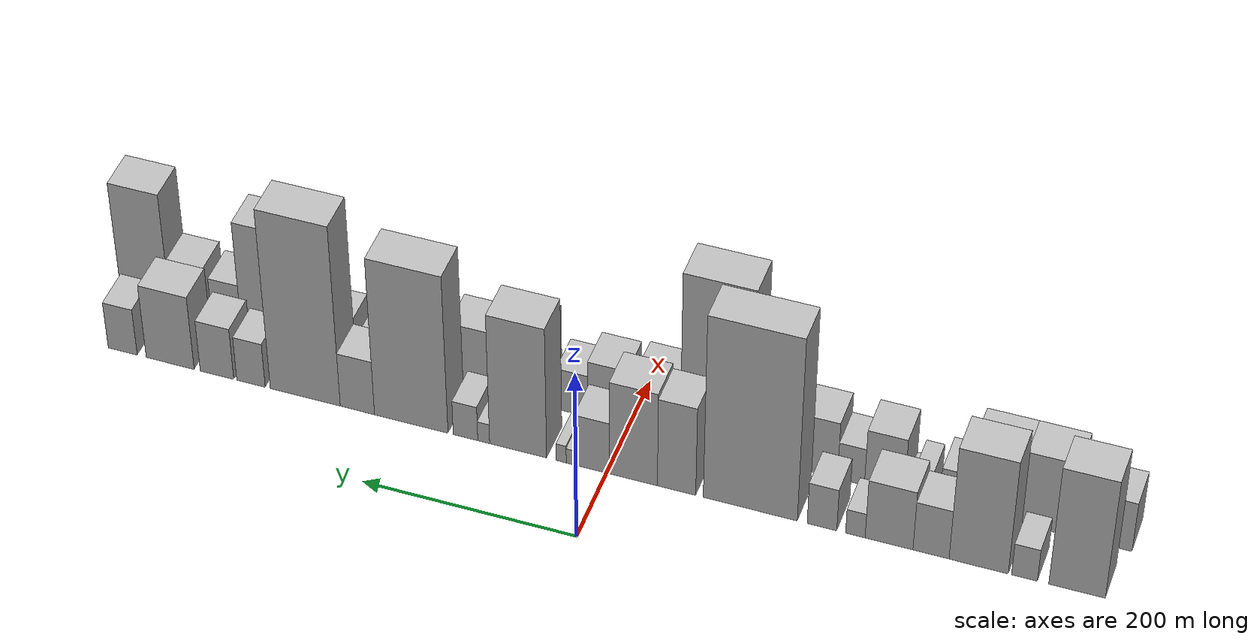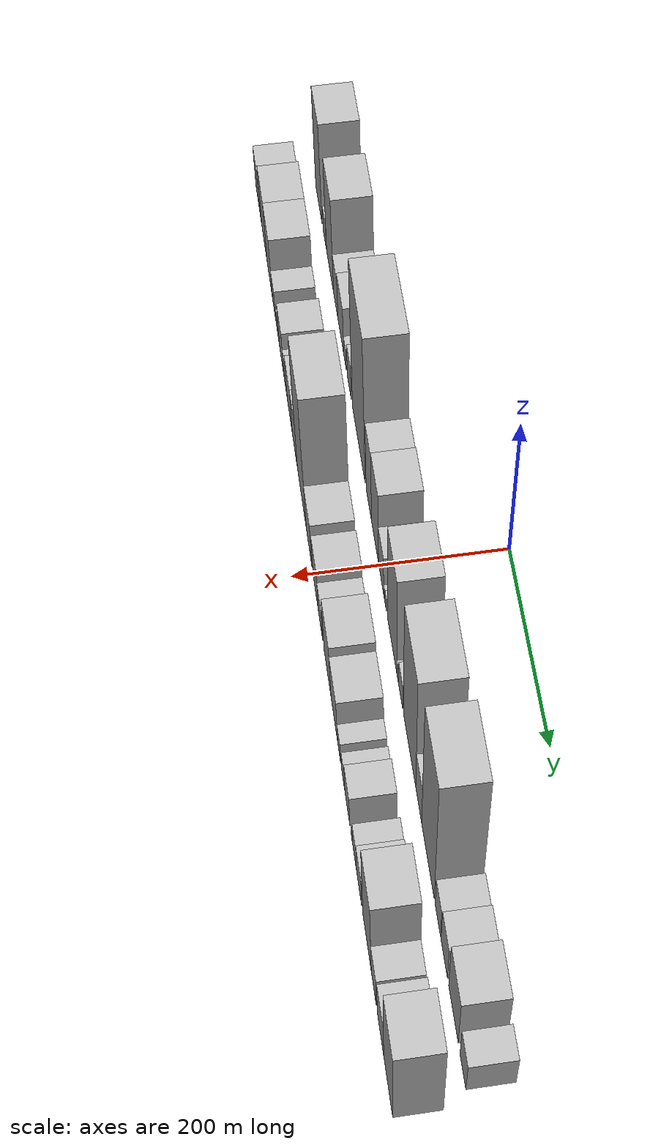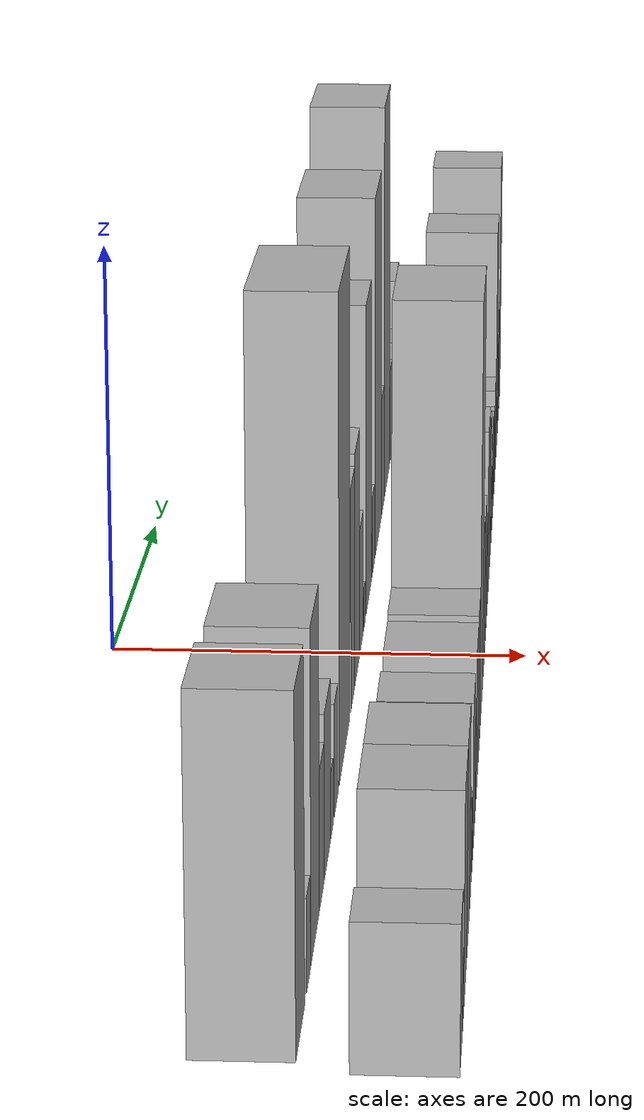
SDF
<sdf version="1.6">
 <world name="default">
  <scene>
   <sky><clouds><speed>12</speed></clouds></sky>
   <ambient>0.4 0.4 0.4 1</ambient>
   <background>0.7 0.7 0.7 1</background>
   <shadows>1</shadows>
  </scene>
  <gravity>0 0 -9.8066</gravity>
  <magnetic_field>6e-06 2.3e-05 -4.2e-05</magnetic_field>
  <physics default="0" name="default_physics" type="ode">
   <ode>
    <solver>
     <type>quick</type>
     <iters>10</iters>
     <sor>1.0</sor>
     <use_dynamic_moi_rescaling>0</use_dynamic_moi_rescaling>
    </solver>
    <constraints>
     <cfm>0</cfm>
     <erp>0.2</erp>
     <contact_max_correcting_vel>100</contact_max_correcting_vel>
     <contact_surface_layer>0.001</contact_surface_layer>
    </constraints>
   </ode>
   <max_step_size>0.004</max_step_size>
   <real_time_factor>1</real_time_factor>
   <real_time_update_rate>250</real_time_update_rate>
  </physics>
  <light name="sun" type="directional">
   <pose>0 0 10 0 0 0</pose>
   <diffuse>0.8 0.8 0.8 1</diffuse>
   <specular>0.2 0.2 0.2 1</specular>
   <attenuation>
    <range>1000</range>
    <constant>0.9</constant>
    <linear>0.01</linear>
    <quadratic>0.001</quadratic>
   </attenuation>
   <direction>-0.5 0.1 -0.9</direction>
  </light>
  <model name="building_1">
   <static>1</static>
   <pose>100.0000 -426.1204 0 0.000000 0.000000 0.000000</pose>
   <link name="link">
    <pose>0 0 72.00 0 0 0</pose>
    <collision name="collision"><geometry><box><size>40.0000 49.7592 144.0000</size></box></geometry></collision>
    <visual name="visual">
     <cast_shadows>0</cast_shadows>
     <geometry><box><size>40.0000 49.7592 144.0000</size></box></geometry>
     <material>
      <script>
       <uri>model://HANNAS_wall/materials/scripts</uri>
       <uri>model://HANNAS_wall/materials/textures</uri>
       <name>vrc/HANNAS_wall</name>
      </script>
     </material>
    </visual>
   </link>
  </model>
  <model name="building_2">
   <static>1</static>
   <pose>100.0000 -379.8264 0 0.000000 0.000000 0.000000</pose>
   <link name="link">
    <pose>0 0 19.50 0 0 0</pose>
    <collision name="collision"><geometry><box><size>40.0000 22.8288 39.0000</size></box></geometry></collision>
    <visual name="visual">
     <cast_shadows>0</cast_shadows>
     <geometry><box><size>40.0000 22.8288 39.0000</size></box></geometry>
     <material>
      <script>
       <uri>model://HANNAS_wall/materials/scripts</uri>
       <uri>model://HANNAS_wall/materials/textures</uri>
       <name>vrc/HANNAS_wall</name>
      </script>
     </material>
    </visual>
   </link>
  </model>
  <model name="building_3">
   <static>1</static>
   <pose>100.0000 -339.0789 0 0.000000 0.000000 0.000000</pose>
   <link name="link">
    <pose>0 0 69.00 0 0 0</pose>
    <collision name="collision"><geometry><box><size>40.0000 52.6660 138.0000</size></box></geometry></collision>
    <visual name="visual">
     <cast_shadows>0</cast_shadows>
     <geometry><box><size>40.0000 52.6660 138.0000</size></box></geometry>
     <material>
      <script>
       <uri>model://HANNAS_wall/materials/scripts</uri>
       <uri>model://HANNAS_wall/materials/textures</uri>
       <name>vrc/HANNAS_wall</name>
      </script>
     </material>
    </visual>
   </link>
  </model>
  <model name="building_4">
   <static>1</static>
   <pose>100.0000 -296.5506 0 0.000000 0.000000 0.000000</pose>
   <link name="link">
    <pose>0 0 30.00 0 0 0</pose>
    <collision name="collision"><geometry><box><size>40.0000 32.3906 60.0000</size></box></geometry></collision>
    <visual name="visual">
     <cast_shadows>0</cast_shadows>
     <geometry><box><size>40.0000 32.3906 60.0000</size></box></geometry>
     <material>
      <script>
       <uri>model://HANNAS_wall/materials/scripts</uri>
       <uri>model://HANNAS_wall/materials/textures</uri>
       <name>vrc/HANNAS_wall</name>
      </script>
     </material>
    </visual>
   </link>
  </model>
  <model name="building_5">
   <static>1</static>
   <pose>100.0000 -258.8108 0 0.000000 0.000000 0.000000</pose>
   <link name="link">
    <pose>0 0 36.00 0 0 0</pose>
    <collision name="collision"><geometry><box><size>40.0000 43.0890 72.0000</size></box></geometry></collision>
    <visual name="visual">
     <cast_shadows>0</cast_shadows>
     <geometry><box><size>40.0000 43.0890 72.0000</size></box></geometry>
     <material>
      <script>
       <uri>model://HANNAS_wall/materials/scripts</uri>
       <uri>model://HANNAS_wall/materials/textures</uri>
       <name>vrc/HANNAS_wall</name>
      </script>
     </material>
    </visual>
   </link>
  </model>
  <model name="building_6">
   <static>1</static>
   <pose>100.0000 -228.4655 0 0.000000 0.000000 0.000000</pose>
   <link name="link">
    <pose>0 0 15.00 0 0 0</pose>
    <collision name="collision"><geometry><box><size>40.0000 17.6015 30.0000</size></box></geometry></collision>
    <visual name="visual">
     <cast_shadows>0</cast_shadows>
     <geometry><box><size>40.0000 17.6015 30.0000</size></box></geometry>
     <material>
      <script>
       <uri>model://HANNAS_wall/materials/scripts</uri>
       <uri>model://HANNAS_wall/materials/textures</uri>
       <name>vrc/HANNAS_wall</name>
      </script>
     </material>
    </visual>
   </link>
  </model>
  <model name="building_7">
   <static>1</static>
   <pose>100.0000 -198.2468 0 0.000000 0.000000 0.000000</pose>
   <link name="link">
    <pose>0 0 25.50 0 0 0</pose>
    <collision name="collision"><geometry><box><size>40.0000 26.8360 51.0000</size></box></geometry></collision>
    <visual name="visual">
     <cast_shadows>0</cast_shadows>
     <geometry><box><size>40.0000 26.8360 51.0000</size></box></geometry>
     <material>
      <script>
       <uri>model://HANNAS_wall/materials/scripts</uri>
       <uri>model://HANNAS_wall/materials/textures</uri>
       <name>vrc/HANNAS_wall</name>
      </script>
     </material>
    </visual>
   </link>
  </model>
  <model name="building_8">
   <static>1</static>
   <pose>100.0000 -132.7053 0 0.000000 0.000000 0.000000</pose>
   <link name="link">
    <pose>0 0 111.00 0 0 0</pose>
    <collision name="collision"><geometry><box><size>40.0000 86.2470 222.0000</size></box></geometry></collision>
    <visual name="visual">
     <cast_shadows>0</cast_shadows>
     <geometry><box><size>40.0000 86.2470 222.0000</size></box></geometry>
     <material>
      <script>
       <uri>model://HANNAS_wall/materials/scripts</uri>
       <uri>model://HANNAS_wall/materials/textures</uri>
       <name>vrc/HANNAS_wall</name>
      </script>
     </material>
    </visual>
   </link>
  </model>
  <model name="building_9">
   <static>1</static>
   <pose>100.0000 -64.8453 0 0.000000 0.000000 0.000000</pose>
   <link name="link">
    <pose>0 0 54.00 0 0 0</pose>
    <collision name="collision"><geometry><box><size>40.0000 35.4730 108.0000</size></box></geometry></collision>
    <visual name="visual">
     <cast_shadows>0</cast_shadows>
     <geometry><box><size>40.0000 35.4730 108.0000</size></box></geometry>
     <material>
      <script>
       <uri>model://HANNAS_wall/materials/scripts</uri>
       <uri>model://HANNAS_wall/materials/textures</uri>
       <name>vrc/HANNAS_wall</name>
      </script>
     </material>
    </visual>
   </link>
  </model>
  <model name="building_10">
   <static>1</static>
   <pose>100.0000 -24.6649 0 0.000000 0.000000 0.000000</pose>
   <link name="link">
    <pose>0 0 57.00 0 0 0</pose>
    <collision name="collision"><geometry><box><size>40.0000 44.8879 114.0000</size></box></geometry></collision>
    <visual name="visual">
     <cast_shadows>0</cast_shadows>
     <geometry><box><size>40.0000 44.8879 114.0000</size></box></geometry>
     <material>
      <script>
       <uri>model://HANNAS_wall/materials/scripts</uri>
       <uri>model://HANNAS_wall/materials/textures</uri>
       <name>vrc/HANNAS_wall</name>
      </script>
     </material>
    </visual>
   </link>
  </model>
  <model name="building_11">
   <static>1</static>
   <pose>100.0000 14.1119 0 0.000000 0.000000 0.000000</pose>
   <link name="link">
    <pose>0 0 31.50 0 0 0</pose>
    <collision name="collision"><geometry><box><size>40.0000 32.6657 63.0000</size></box></geometry></collision>
    <visual name="visual">
     <cast_shadows>0</cast_shadows>
     <geometry><box><size>40.0000 32.6657 63.0000</size></box></geometry>
     <material>
      <script>
       <uri>model://HANNAS_wall/materials/scripts</uri>
       <uri>model://HANNAS_wall/materials/textures</uri>
       <name>vrc/HANNAS_wall</name>
      </script>
     </material>
    </visual>
   </link>
  </model>
  <model name="building_12">
   <static>1</static>
   <pose>100.0000 34.2035 0 0.000000 0.000000 0.000000</pose>
   <link name="link">
    <pose>0 0 9.00 0 0 0</pose>
    <collision name="collision"><geometry><box><size>40.0000 7.5174 18.0000</size></box></geometry></collision>
    <visual name="visual">
     <cast_shadows>0</cast_shadows>
     <geometry><box><size>40.0000 7.5174 18.0000</size></box></geometry>
     <material>
      <script>
       <uri>model://HANNAS_wall/materials/scripts</uri>
       <uri>model://HANNAS_wall/materials/textures</uri>
       <name>vrc/HANNAS_wall</name>
      </script>
     </material>
    </visual>
   </link>
  </model>
  <model name="building_13">
   <static>1</static>
   <pose>100.0000 42.6813 0 0.000000 0.000000 0.000000</pose>
   <link name="link">
    <pose>0 0 10.50 0 0 0</pose>
    <collision name="collision"><geometry><box><size>40.0000 9.4382 21.0000</size></box></geometry></collision>
    <visual name="visual">
     <cast_shadows>0</cast_shadows>
     <geometry><box><size>40.0000 9.4382 21.0000</size></box></geometry>
     <material>
      <script>
       <uri>model://HANNAS_wall/materials/scripts</uri>
       <uri>model://HANNAS_wall/materials/textures</uri>
       <name>vrc/HANNAS_wall</name>
      </script>
     </material>
    </visual>
   </link>
  </model>
  <model name="building_14">
   <static>1</static>
   <pose>100.0000 83.3223 0 0.000000 0.000000 0.000000</pose>
   <link name="link">
    <pose>0 0 79.50 0 0 0</pose>
    <collision name="collision"><geometry><box><size>40.0000 53.8439 159.0000</size></box></geometry></collision>
    <visual name="visual">
     <cast_shadows>0</cast_shadows>
     <geometry><box><size>40.0000 53.8439 159.0000</size></box></geometry>
     <material>
      <script>
       <uri>model://HANNAS_wall/materials/scripts</uri>
       <uri>model://HANNAS_wall/materials/textures</uri>
       <name>vrc/HANNAS_wall</name>
      </script>
     </material>
    </visual>
   </link>
  </model>
  <model name="building_15">
   <static>1</static>
   <pose>100.0000 115.8907 0 0.000000 0.000000 0.000000</pose>
   <link name="link">
    <pose>0 0 12.00 0 0 0</pose>
    <collision name="collision"><geometry><box><size>40.0000 11.2929 24.0000</size></box></geometry></collision>
    <visual name="visual">
     <cast_shadows>0</cast_shadows>
     <geometry><box><size>40.0000 11.2929 24.0000</size></box></geometry>
     <material>
      <script>
       <uri>model://HANNAS_wall/materials/scripts</uri>
       <uri>model://HANNAS_wall/materials/textures</uri>
       <name>vrc/HANNAS_wall</name>
      </script>
     </material>
    </visual>
   </link>
  </model>
  <model name="building_16">
   <static>1</static>
   <pose>100.0000 133.2176 0 0.000000 0.000000 0.000000</pose>
   <link name="link">
    <pose>0 0 21.00 0 0 0</pose>
    <collision name="collision"><geometry><box><size>40.0000 23.3609 42.0000</size></box></geometry></collision>
    <visual name="visual">
     <cast_shadows>0</cast_shadows>
     <geometry><box><size>40.0000 23.3609 42.0000</size></box></geometry>
     <material>
      <script>
       <uri>model://HANNAS_wall/materials/scripts</uri>
       <uri>model://HANNAS_wall/materials/textures</uri>
       <name>vrc/HANNAS_wall</name>
      </script>
     </material>
    </visual>
   </link>
  </model>
  <model name="building_17">
   <static>1</static>
   <pose>100.0000 185.1292 0 0.000000 0.000000 0.000000</pose>
   <link name="link">
    <pose>0 0 96.00 0 0 0</pose>
    <collision name="collision"><geometry><box><size>40.0000 70.4622 192.0000</size></box></geometry></collision>
    <visual name="visual">
     <cast_shadows>0</cast_shadows>
     <geometry><box><size>40.0000 70.4622 192.0000</size></box></geometry>
     <material>
      <script>
       <uri>model://HANNAS_wall/materials/scripts</uri>
       <uri>model://HANNAS_wall/materials/textures</uri>
       <name>vrc/HANNAS_wall</name>
      </script>
     </material>
    </visual>
   </link>
  </model>
  <model name="building_18">
   <static>1</static>
   <pose>100.0000 236.8754 0 0.000000 0.000000 0.000000</pose>
   <link name="link">
    <pose>0 0 33.00 0 0 0</pose>
    <collision name="collision"><geometry><box><size>40.0000 33.0302 66.0000</size></box></geometry></collision>
    <visual name="visual">
     <cast_shadows>0</cast_shadows>
     <geometry><box><size>40.0000 33.0302 66.0000</size></box></geometry>
     <material>
      <script>
       <uri>model://HANNAS_wall/materials/scripts</uri>
       <uri>model://HANNAS_wall/materials/textures</uri>
       <name>vrc/HANNAS_wall</name>
      </script>
     </material>
    </visual>
   </link>
  </model>
  <model name="building_19">
   <static>1</static>
   <pose>100.0000 287.3992 0 0.000000 0.000000 0.000000</pose>
   <link name="link">
    <pose>0 0 109.50 0 0 0</pose>
    <collision name="collision"><geometry><box><size>40.0000 68.0175 219.0000</size></box></geometry></collision>
    <visual name="visual">
     <cast_shadows>0</cast_shadows>
     <geometry><box><size>40.0000 68.0175 219.0000</size></box></geometry>
     <material>
      <script>
       <uri>model://HANNAS_wall/materials/scripts</uri>
       <uri>model://HANNAS_wall/materials/textures</uri>
       <name>vrc/HANNAS_wall</name>
      </script>
     </material>
    </visual>
   </link>
  </model>
  <model name="building_20">
   <static>1</static>
   <pose>100.0000 340.3012 0 0.000000 0.000000 0.000000</pose>
   <link name="link">
    <pose>0 0 27.00 0 0 0</pose>
    <collision name="collision"><geometry><box><size>40.0000 27.7864 54.0000</size></box></geometry></collision>
    <visual name="visual">
     <cast_shadows>0</cast_shadows>
     <geometry><box><size>40.0000 27.7864 54.0000</size></box></geometry>
     <material>
      <script>
       <uri>model://HANNAS_wall/materials/scripts</uri>
       <uri>model://HANNAS_wall/materials/textures</uri>
       <name>vrc/HANNAS_wall</name>
      </script>
     </material>
    </visual>
   </link>
  </model>
  <model name="building_21">
   <static>1</static>
   <pose>100.0000 373.6779 0 0.000000 0.000000 0.000000</pose>
   <link name="link">
    <pose>0 0 31.50 0 0 0</pose>
    <collision name="collision"><geometry><box><size>40.0000 32.9671 63.0000</size></box></geometry></collision>
    <visual name="visual">
     <cast_shadows>0</cast_shadows>
     <geometry><box><size>40.0000 32.9671 63.0000</size></box></geometry>
     <material>
      <script>
       <uri>model://HANNAS_wall/materials/scripts</uri>
       <uri>model://HANNAS_wall/materials/textures</uri>
       <name>vrc/HANNAS_wall</name>
      </script>
     </material>
    </visual>
   </link>
  </model>
  <model name="building_22">
   <static>1</static>
   <pose>100.0000 419.8662 0 0.000000 0.000000 0.000000</pose>
   <link name="link">
    <pose>0 0 45.00 0 0 0</pose>
    <collision name="collision"><geometry><box><size>40.0000 47.4095 90.0000</size></box></geometry></collision>
    <visual name="visual">
     <cast_shadows>0</cast_shadows>
     <geometry><box><size>40.0000 47.4095 90.0000</size></box></geometry>
     <material>
      <script>
       <uri>model://HANNAS_wall/materials/scripts</uri>
       <uri>model://HANNAS_wall/materials/textures</uri>
       <name>vrc/HANNAS_wall</name>
      </script>
     </material>
    </visual>
   </link>
  </model>
  <model name="building_23">
   <static>1</static>
   <pose>100.0000 466.9718 0 0.000000 0.000000 0.000000</pose>
   <link name="link">
    <pose>0 0 28.50 0 0 0</pose>
    <collision name="collision"><geometry><box><size>40.0000 28.8017 57.0000</size></box></geometry></collision>
    <visual name="visual">
     <cast_shadows>0</cast_shadows>
     <geometry><box><size>40.0000 28.8017 57.0000</size></box></geometry>
     <material>
      <script>
       <uri>model://HANNAS_wall/materials/scripts</uri>
       <uri>model://HANNAS_wall/materials/textures</uri>
       <name>vrc/HANNAS_wall</name>
      </script>
     </material>
    </visual>
   </link>
  </model>
  <model name="building_24">
   <static>1</static>
   <pose>160.0000 -444.2608 0 0.000000 0.000000 0.000000</pose>
   <link name="link">
    <pose>0 0 30.00 0 0 0</pose>
    <collision name="collision"><geometry><box><size>40.0000 31.4785 60.0000</size></box></geometry></collision>
    <visual name="visual">
     <cast_shadows>0</cast_shadows>
     <geometry><box><size>40.0000 31.4785 60.0000</size></box></geometry>
     <material>
      <script>
       <uri>model://HANNAS_wall/materials/scripts</uri>
       <uri>model://HANNAS_wall/materials/textures</uri>
       <name>vrc/HANNAS_wall</name>
      </script>
     </material>
    </visual>
   </link>
  </model>
  <model name="building_25">
   <static>1</static>
   <pose>160.0000 -420.6470 0 0.000000 0.000000 0.000000</pose>
   <link name="link">
    <pose>0 0 15.00 0 0 0</pose>
    <collision name="collision"><geometry><box><size>40.0000 15.7491 30.0000</size></box></geometry></collision>
    <visual name="visual">
     <cast_shadows>0</cast_shadows>
     <geometry><box><size>40.0000 15.7491 30.0000</size></box></geometry>
     <material>
      <script>
       <uri>model://HANNAS_wall/materials/scripts</uri>
       <uri>model://HANNAS_wall/materials/textures</uri>
       <name>vrc/HANNAS_wall</name>
      </script>
     </material>
    </visual>
   </link>
  </model>
  <model name="building_26">
   <static>1</static>
   <pose>160.0000 -409.7608 0 0.000000 0.000000 0.000000</pose>
   <link name="link">
    <pose>0 0 7.50 0 0 0</pose>
    <collision name="collision"><geometry><box><size>40.0000 6.0232 15.0000</size></box></geometry></collision>
    <visual name="visual">
     <cast_shadows>0</cast_shadows>
     <geometry><box><size>40.0000 6.0232 15.0000</size></box></geometry>
     <material>
      <script>
       <uri>model://HANNAS_wall/materials/scripts</uri>
       <uri>model://HANNAS_wall/materials/textures</uri>
       <name>vrc/HANNAS_wall</name>
      </script>
     </material>
    </visual>
   </link>
  </model>
  <model name="building_27">
   <static>1</static>
   <pose>160.0000 -383.4668 0 0.000000 0.000000 0.000000</pose>
   <link name="link">
    <pose>0 0 45.00 0 0 0</pose>
    <collision name="collision"><geometry><box><size>40.0000 46.5648 90.0000</size></box></geometry></collision>
    <visual name="visual">
     <cast_shadows>0</cast_shadows>
     <geometry><box><size>40.0000 46.5648 90.0000</size></box></geometry>
     <material>
      <script>
       <uri>model://HANNAS_wall/materials/scripts</uri>
       <uri>model://HANNAS_wall/materials/textures</uri>
       <name>vrc/HANNAS_wall</name>
      </script>
     </material>
    </visual>
   </link>
  </model>
  <model name="building_28">
   <static>1</static>
   <pose>160.0000 -336.9314 0 0.000000 0.000000 0.000000</pose>
   <link name="link">
    <pose>0 0 45.00 0 0 0</pose>
    <collision name="collision"><geometry><box><size>40.0000 46.5062 90.0000</size></box></geometry></collision>
    <visual name="visual">
     <cast_shadows>0</cast_shadows>
     <geometry><box><size>40.0000 46.5062 90.0000</size></box></geometry>
     <material>
      <script>
       <uri>model://HANNAS_wall/materials/scripts</uri>
       <uri>model://HANNAS_wall/materials/textures</uri>
       <name>vrc/HANNAS_wall</name>
      </script>
     </material>
    </visual>
   </link>
  </model>
  <model name="building_29">
   <static>1</static>
   <pose>160.0000 -300.6192 0 0.000000 0.000000 0.000000</pose>
   <link name="link">
    <pose>0 0 22.50 0 0 0</pose>
    <collision name="collision"><geometry><box><size>40.0000 26.1182 45.0000</size></box></geometry></collision>
    <visual name="visual">
     <cast_shadows>0</cast_shadows>
     <geometry><box><size>40.0000 26.1182 45.0000</size></box></geometry>
     <material>
      <script>
       <uri>model://HANNAS_wall/materials/scripts</uri>
       <uri>model://HANNAS_wall/materials/textures</uri>
       <name>vrc/HANNAS_wall</name>
      </script>
     </material>
    </visual>
   </link>
  </model>
  <model name="building_30">
   <static>1</static>
   <pose>160.0000 -271.1797 0 0.000000 0.000000 0.000000</pose>
   <link name="link">
    <pose>0 0 16.50 0 0 0</pose>
    <collision name="collision"><geometry><box><size>40.0000 16.7608 33.0000</size></box></geometry></collision>
    <visual name="visual">
     <cast_shadows>0</cast_shadows>
     <geometry><box><size>40.0000 16.7608 33.0000</size></box></geometry>
     <material>
      <script>
       <uri>model://HANNAS_wall/materials/scripts</uri>
       <uri>model://HANNAS_wall/materials/textures</uri>
       <name>vrc/HANNAS_wall</name>
      </script>
     </material>
    </visual>
   </link>
  </model>
  <model name="building_31">
   <static>1</static>
   <pose>160.0000 -259.1340 0 0.000000 0.000000 0.000000</pose>
   <link name="link">
    <pose>0 0 7.50 0 0 0</pose>
    <collision name="collision"><geometry><box><size>40.0000 7.3306 15.0000</size></box></geometry></collision>
    <visual name="visual">
     <cast_shadows>0</cast_shadows>
     <geometry><box><size>40.0000 7.3306 15.0000</size></box></geometry>
     <material>
      <script>
       <uri>model://HANNAS_wall/materials/scripts</uri>
       <uri>model://HANNAS_wall/materials/textures</uri>
       <name>vrc/HANNAS_wall</name>
      </script>
     </material>
    </visual>
   </link>
  </model>
  <model name="building_32">
   <static>1</static>
   <pose>160.0000 -237.2699 0 0.000000 0.000000 0.000000</pose>
   <link name="link">
    <pose>0 0 34.50 0 0 0</pose>
    <collision name="collision"><geometry><box><size>40.0000 36.3977 69.0000</size></box></geometry></collision>
    <visual name="visual">
     <cast_shadows>0</cast_shadows>
     <geometry><box><size>40.0000 36.3977 69.0000</size></box></geometry>
     <material>
      <script>
       <uri>model://HANNAS_wall/materials/scripts</uri>
       <uri>model://HANNAS_wall/materials/textures</uri>
       <name>vrc/HANNAS_wall</name>
      </script>
     </material>
    </visual>
   </link>
  </model>
  <model name="building_33">
   <static>1</static>
   <pose>160.0000 -206.7360 0 0.000000 0.000000 0.000000</pose>
   <link name="link">
    <pose>0 0 22.50 0 0 0</pose>
    <collision name="collision"><geometry><box><size>40.0000 24.6701 45.0000</size></box></geometry></collision>
    <visual name="visual">
     <cast_shadows>0</cast_shadows>
     <geometry><box><size>40.0000 24.6701 45.0000</size></box></geometry>
     <material>
      <script>
       <uri>model://HANNAS_wall/materials/scripts</uri>
       <uri>model://HANNAS_wall/materials/textures</uri>
       <name>vrc/HANNAS_wall</name>
      </script>
     </material>
    </visual>
   </link>
  </model>
  <model name="building_34">
   <static>1</static>
   <pose>160.0000 -173.7825 0 0.000000 0.000000 0.000000</pose>
   <link name="link">
    <pose>0 0 34.50 0 0 0</pose>
    <collision name="collision"><geometry><box><size>40.0000 41.2369 69.0000</size></box></geometry></collision>
    <visual name="visual">
     <cast_shadows>0</cast_shadows>
     <geometry><box><size>40.0000 41.2369 69.0000</size></box></geometry>
     <material>
      <script>
       <uri>model://HANNAS_wall/materials/scripts</uri>
       <uri>model://HANNAS_wall/materials/textures</uri>
       <name>vrc/HANNAS_wall</name>
      </script>
     </material>
    </visual>
   </link>
  </model>
  <model name="building_35">
   <static>1</static>
   <pose>160.0000 -134.2982 0 0.000000 0.000000 0.000000</pose>
   <link name="link">
    <pose>0 0 36.00 0 0 0</pose>
    <collision name="collision"><geometry><box><size>40.0000 37.7316 72.0000</size></box></geometry></collision>
    <visual name="visual">
     <cast_shadows>0</cast_shadows>
     <geometry><box><size>40.0000 37.7316 72.0000</size></box></geometry>
     <material>
      <script>
       <uri>model://HANNAS_wall/materials/scripts</uri>
       <uri>model://HANNAS_wall/materials/textures</uri>
       <name>vrc/HANNAS_wall</name>
      </script>
     </material>
    </visual>
   </link>
  </model>
  <model name="building_36">
   <static>1</static>
   <pose>160.0000 -81.9164 0 0.000000 0.000000 0.000000</pose>
   <link name="link">
    <pose>0 0 102.00 0 0 0</pose>
    <collision name="collision"><geometry><box><size>40.0000 67.0320 204.0000</size></box></geometry></collision>
    <visual name="visual">
     <cast_shadows>0</cast_shadows>
     <geometry><box><size>40.0000 67.0320 204.0000</size></box></geometry>
     <material>
      <script>
       <uri>model://HANNAS_wall/materials/scripts</uri>
       <uri>model://HANNAS_wall/materials/textures</uri>
       <name>vrc/HANNAS_wall</name>
      </script>
     </material>
    </visual>
   </link>
  </model>
  <model name="building_37">
   <static>1</static>
   <pose>160.0000 -27.4535 0 0.000000 0.000000 0.000000</pose>
   <link name="link">
    <pose>0 0 36.00 0 0 0</pose>
    <collision name="collision"><geometry><box><size>40.0000 41.8938 72.0000</size></box></geometry></collision>
    <visual name="visual">
     <cast_shadows>0</cast_shadows>
     <geometry><box><size>40.0000 41.8938 72.0000</size></box></geometry>
     <material>
      <script>
       <uri>model://HANNAS_wall/materials/scripts</uri>
       <uri>model://HANNAS_wall/materials/textures</uri>
       <name>vrc/HANNAS_wall</name>
      </script>
     </material>
    </visual>
   </link>
  </model>
  <model name="building_38">
   <static>1</static>
   <pose>160.0000 20.1905 0 0.000000 0.000000 0.000000</pose>
   <link name="link">
    <pose>0 0 34.50 0 0 0</pose>
    <collision name="collision"><geometry><box><size>40.0000 37.3941 69.0000</size></box></geometry></collision>
    <visual name="visual">
     <cast_shadows>0</cast_shadows>
     <geometry><box><size>40.0000 37.3941 69.0000</size></box></geometry>
     <material>
      <script>
       <uri>model://HANNAS_wall/materials/scripts</uri>
       <uri>model://HANNAS_wall/materials/textures</uri>
       <name>vrc/HANNAS_wall</name>
      </script>
     </material>
    </visual>
   </link>
  </model>
  <model name="building_39">
   <static>1</static>
   <pose>160.0000 53.7200 0 0.000000 0.000000 0.000000</pose>
   <link name="link">
    <pose>0 0 25.50 0 0 0</pose>
    <collision name="collision"><geometry><box><size>40.0000 29.6651 51.0000</size></box></geometry></collision>
    <visual name="visual">
     <cast_shadows>0</cast_shadows>
     <geometry><box><size>40.0000 29.6651 51.0000</size></box></geometry>
     <material>
      <script>
       <uri>model://HANNAS_wall/materials/scripts</uri>
       <uri>model://HANNAS_wall/materials/textures</uri>
       <name>vrc/HANNAS_wall</name>
      </script>
     </material>
    </visual>
   </link>
  </model>
  <model name="building_40">
   <static>1</static>
   <pose>160.0000 101.4592 0 0.000000 0.000000 0.000000</pose>
   <link name="link">
    <pose>0 0 45.00 0 0 0</pose>
    <collision name="collision"><geometry><box><size>40.0000 47.8132 90.0000</size></box></geometry></collision>
    <visual name="visual">
     <cast_shadows>0</cast_shadows>
     <geometry><box><size>40.0000 47.8132 90.0000</size></box></geometry>
     <material>
      <script>
       <uri>model://HANNAS_wall/materials/scripts</uri>
       <uri>model://HANNAS_wall/materials/textures</uri>
       <name>vrc/HANNAS_wall</name>
      </script>
     </material>
    </visual>
   </link>
  </model>
  <model name="building_41">
   <static>1</static>
   <pose>160.0000 147.4232 0 0.000000 0.000000 0.000000</pose>
   <link name="link">
    <pose>0 0 37.50 0 0 0</pose>
    <collision name="collision"><geometry><box><size>40.0000 44.1148 75.0000</size></box></geometry></collision>
    <visual name="visual">
     <cast_shadows>0</cast_shadows>
     <geometry><box><size>40.0000 44.1148 75.0000</size></box></geometry>
     <material>
      <script>
       <uri>model://HANNAS_wall/materials/scripts</uri>
       <uri>model://HANNAS_wall/materials/textures</uri>
       <name>vrc/HANNAS_wall</name>
      </script>
     </material>
    </visual>
   </link>
  </model>
  <model name="building_42">
   <static>1</static>
   <pose>160.0000 179.1580 0 0.000000 0.000000 0.000000</pose>
   <link name="link">
    <pose>0 0 18.00 0 0 0</pose>
    <collision name="collision"><geometry><box><size>40.0000 19.3549 36.0000</size></box></geometry></collision>
    <visual name="visual">
     <cast_shadows>0</cast_shadows>
     <geometry><box><size>40.0000 19.3549 36.0000</size></box></geometry>
     <material>
      <script>
       <uri>model://HANNAS_wall/materials/scripts</uri>
       <uri>model://HANNAS_wall/materials/textures</uri>
       <name>vrc/HANNAS_wall</name>
      </script>
     </material>
    </visual>
   </link>
  </model>
  <model name="building_43">
   <static>1</static>
   <pose>160.0000 205.8240 0 0.000000 0.000000 0.000000</pose>
   <link name="link">
    <pose>0 0 18.00 0 0 0</pose>
    <collision name="collision"><geometry><box><size>40.0000 19.9771 36.0000</size></box></geometry></collision>
    <visual name="visual">
     <cast_shadows>0</cast_shadows>
     <geometry><box><size>40.0000 19.9771 36.0000</size></box></geometry>
     <material>
      <script>
       <uri>model://HANNAS_wall/materials/scripts</uri>
       <uri>model://HANNAS_wall/materials/textures</uri>
       <name>vrc/HANNAS_wall</name>
      </script>
     </material>
    </visual>
   </link>
  </model>
  <model name="building_44">
   <static>1</static>
   <pose>160.0000 231.4944 0 0.000000 0.000000 0.000000</pose>
   <link name="link">
    <pose>0 0 27.00 0 0 0</pose>
    <collision name="collision"><geometry><box><size>40.0000 31.3637 54.0000</size></box></geometry></collision>
    <visual name="visual">
     <cast_shadows>0</cast_shadows>
     <geometry><box><size>40.0000 31.3637 54.0000</size></box></geometry>
     <material>
      <script>
       <uri>model://HANNAS_wall/materials/scripts</uri>
       <uri>model://HANNAS_wall/materials/textures</uri>
       <name>vrc/HANNAS_wall</name>
      </script>
     </material>
    </visual>
   </link>
  </model>
  <model name="building_45">
   <static>1</static>
   <pose>160.0000 260.5845 0 0.000000 0.000000 0.000000</pose>
   <link name="link">
    <pose>0 0 9.00 0 0 0</pose>
    <collision name="collision"><geometry><box><size>40.0000 8.8166 18.0000</size></box></geometry></collision>
    <visual name="visual">
     <cast_shadows>0</cast_shadows>
     <geometry><box><size>40.0000 8.8166 18.0000</size></box></geometry>
     <material>
      <script>
       <uri>model://HANNAS_wall/materials/scripts</uri>
       <uri>model://HANNAS_wall/materials/textures</uri>
       <name>vrc/HANNAS_wall</name>
      </script>
     </material>
    </visual>
   </link>
  </model>
  <model name="building_46">
   <static>1</static>
   <pose>160.0000 276.5592 0 0.000000 0.000000 0.000000</pose>
   <link name="link">
    <pose>0 0 22.50 0 0 0</pose>
    <collision name="collision"><geometry><box><size>40.0000 23.1328 45.0000</size></box></geometry></collision>
    <visual name="visual">
     <cast_shadows>0</cast_shadows>
     <geometry><box><size>40.0000 23.1328 45.0000</size></box></geometry>
     <material>
      <script>
       <uri>model://HANNAS_wall/materials/scripts</uri>
       <uri>model://HANNAS_wall/materials/textures</uri>
       <name>vrc/HANNAS_wall</name>
      </script>
     </material>
    </visual>
   </link>
  </model>
  <model name="building_47">
   <static>1</static>
   <pose>160.0000 303.4868 0 0.000000 0.000000 0.000000</pose>
   <link name="link">
    <pose>0 0 27.00 0 0 0</pose>
    <collision name="collision"><geometry><box><size>40.0000 30.7224 54.0000</size></box></geometry></collision>
    <visual name="visual">
     <cast_shadows>0</cast_shadows>
     <geometry><box><size>40.0000 30.7224 54.0000</size></box></geometry>
     <material>
      <script>
       <uri>model://HANNAS_wall/materials/scripts</uri>
       <uri>model://HANNAS_wall/materials/textures</uri>
       <name>vrc/HANNAS_wall</name>
      </script>
     </material>
    </visual>
   </link>
  </model>
  <model name="building_48">
   <static>1</static>
   <pose>160.0000 350.4329 0 0.000000 0.000000 0.000000</pose>
   <link name="link">
    <pose>0 0 67.50 0 0 0</pose>
    <collision name="collision"><geometry><box><size>40.0000 49.1699 135.0000</size></box></geometry></collision>
    <visual name="visual">
     <cast_shadows>0</cast_shadows>
     <geometry><box><size>40.0000 49.1699 135.0000</size></box></geometry>
     <material>
      <script>
       <uri>model://HANNAS_wall/materials/scripts</uri>
       <uri>model://HANNAS_wall/materials/textures</uri>
       <name>vrc/HANNAS_wall</name>
      </script>
     </material>
    </visual>
   </link>
  </model>
  <model name="building_49">
   <static>1</static>
   <pose>160.0000 389.6244 0 0.000000 0.000000 0.000000</pose>
   <link name="link">
    <pose>0 0 28.50 0 0 0</pose>
    <collision name="collision"><geometry><box><size>40.0000 29.2130 57.0000</size></box></geometry></collision>
    <visual name="visual">
     <cast_shadows>0</cast_shadows>
     <geometry><box><size>40.0000 29.2130 57.0000</size></box></geometry>
     <material>
      <script>
       <uri>model://HANNAS_wall/materials/scripts</uri>
       <uri>model://HANNAS_wall/materials/textures</uri>
       <name>vrc/HANNAS_wall</name>
      </script>
     </material>
    </visual>
   </link>
  </model>
  <model name="building_50">
   <static>1</static>
   <pose>160.0000 427.3902 0 0.000000 0.000000 0.000000</pose>
   <link name="link">
    <pose>0 0 33.00 0 0 0</pose>
    <collision name="collision"><geometry><box><size>40.0000 36.3186 66.0000</size></box></geometry></collision>
    <visual name="visual">
     <cast_shadows>0</cast_shadows>
     <geometry><box><size>40.0000 36.3186 66.0000</size></box></geometry>
     <material>
      <script>
       <uri>model://HANNAS_wall/materials/scripts</uri>
       <uri>model://HANNAS_wall/materials/textures</uri>
       <name>vrc/HANNAS_wall</name>
      </script>
     </material>
    </visual>
   </link>
  </model>
  <model name="building_51">
   <static>1</static>
   <pose>160.0000 470.1164 0 0.000000 0.000000 0.000000</pose>
   <link name="link">
    <pose>0 0 73.50 0 0 0</pose>
    <collision name="collision"><geometry><box><size>40.0000 49.1338 147.0000</size></box></geometry></collision>
    <visual name="visual">
     <cast_shadows>0</cast_shadows>
     <geometry><box><size>40.0000 49.1338 147.0000</size></box></geometry>
     <material>
      <script>
       <uri>model://HANNAS_wall/materials/scripts</uri>
       <uri>model://HANNAS_wall/materials/textures</uri>
       <name>vrc/HANNAS_wall</name>
      </script>
     </material>
    </visual>
   </link>
  </model>
 </world>
</sdf>
